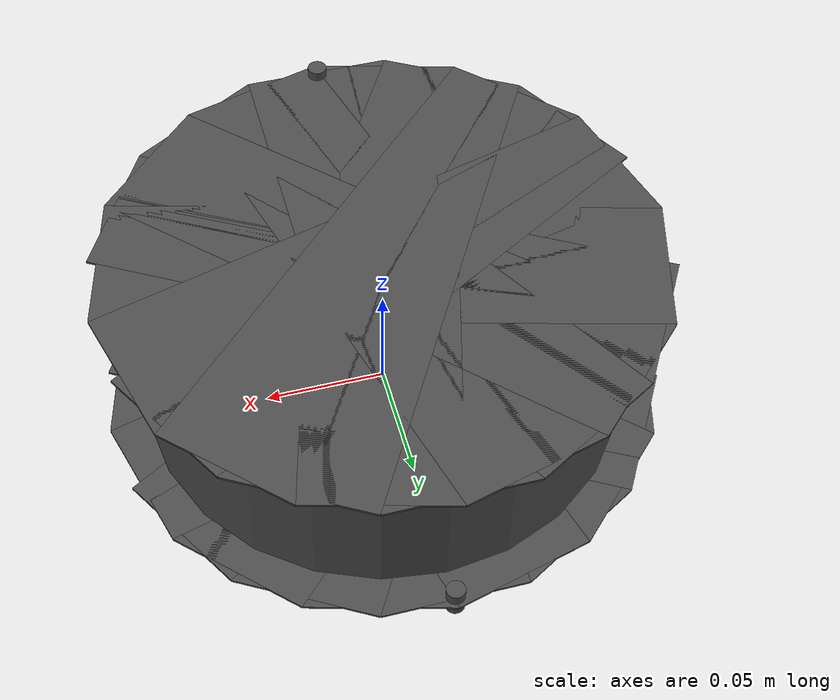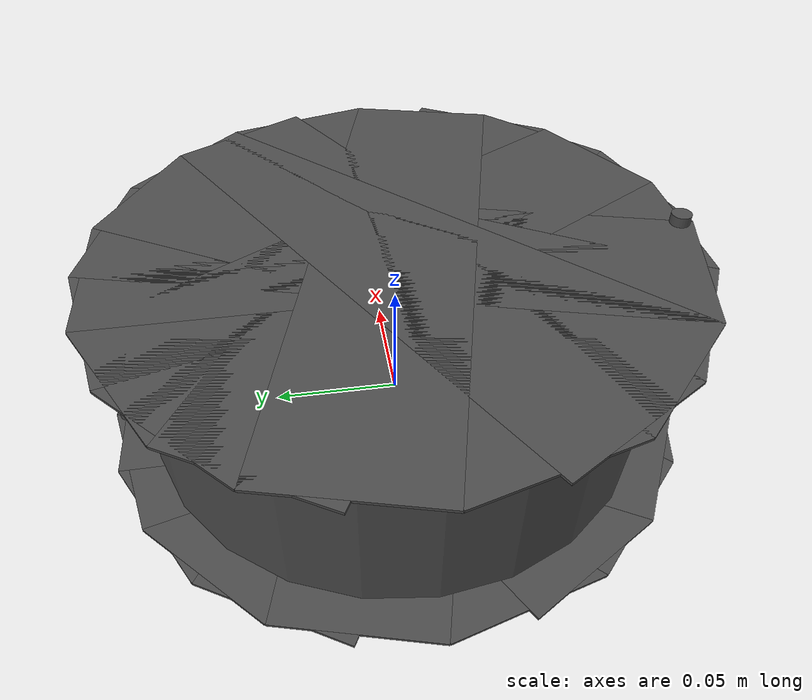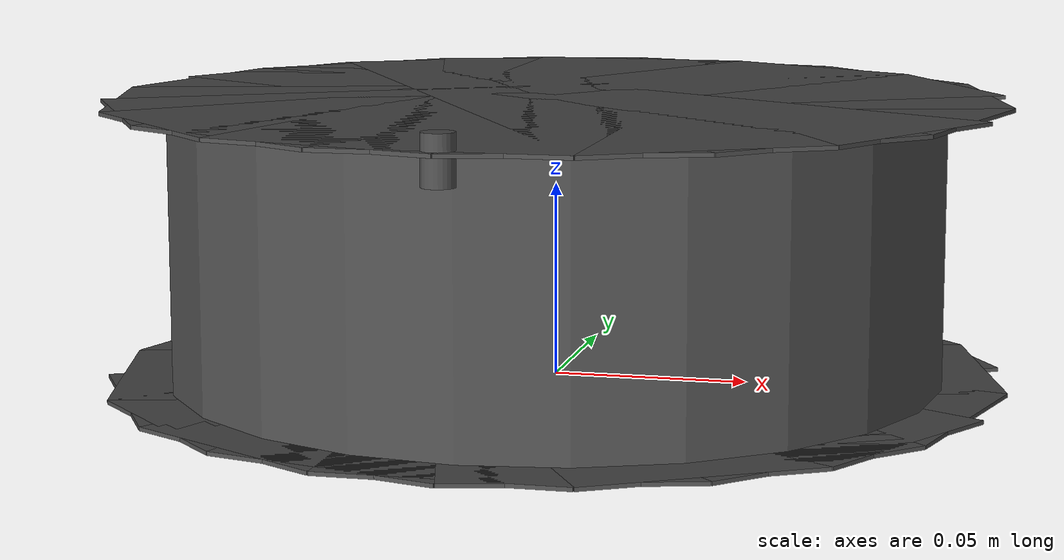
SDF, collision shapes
<?xml version="1.0" ?>
<sdf version="1.6">
  <model name="pulley_part_ariac">
    <link name="link">
      <inertial>
        <pose>0 0 0.035145 0 0 0</pose>
        <mass>0.5</mass>
        <inertia>
          <ixx>0.00191581703</ixx>
          <ixy>0</ixy>
          <ixz>0</ixz>
          <iyy>0.00191581703</iyy>
          <iyz>0</iyz>
          <izz>0.0034199104</izz>
        </inertia>
      </inertial>

      <collision name="collision_asymmetric_mark_top">
        <pose>0 -0.111 0.0705 0 0 0</pose>
        <max_contacts>10</max_contacts>
         <geometry>
          <cylinder>
            <length>0.012</length>
            <radius>0.00392125</radius>
          </cylinder>
         </geometry>
        <surface>
          <contact>
            <ode>
              <max_vel>0.0</max_vel>
              <min_depth>0.001</min_depth>
            </ode>
          </contact>
        </surface>
      </collision>
      <visual name="visual_asymmetric_mark_top">
        <pose>0 -0.111 0.0705 0 0 0</pose>
         <geometry>
          <cylinder>
            <length>0.012</length>
            <radius>0.00392125</radius>
          </cylinder>
         </geometry>
        <material>
          <lighting>1</lighting>
          <script>
            <uri>file://media/materials/scripts/gazebo.material</uri>
            <name>Gazebo/DarkGrey</name>
          </script>
          <emissive>0 0 0 1</emissive>
        </material>
      </visual>

      <collision name="collision_asymmetric_mark_bottom">
        <pose>0 0.111 -0.0005 0 0 0</pose>
        <max_contacts>10</max_contacts>
         <geometry>
          <cylinder>
            <length>0.012</length>
            <radius>0.00392125</radius>
          </cylinder>
         </geometry>
        <surface>
          <contact>
            <ode>
              <max_vel>0.0</max_vel>
              <min_depth>0.001</min_depth>
            </ode>
          </contact>
        </surface>
      </collision>
      <visual name="visual_asymmetric_mark_bottom">
        <pose>0 0.111 -0.0005 0 0 0</pose>
         <geometry>
          <cylinder>
            <length>0.012</length>
            <radius>0.00392125</radius>
          </cylinder>
         </geometry>
        <material>
          <lighting>1</lighting>
          <script>
            <uri>file://media/materials/scripts/gazebo.material</uri>
            <name>Gazebo/DarkGrey</name>
          </script>
          <emissive>0 0 0 1</emissive>
        </material>
      </visual>

      <!-- Top collisions -->
      <collision name="collision_top_1">
        <pose>0 0 0.0719 0 0 0.2618</pose>
        <geometry>
          <box>
            <size>0.225 0.06 0.001</size>
          </box>
        </geometry>
        <surface>
          <contact>
            <ode>
              <max_vel>0.1</max_vel>
              <min_depth>0.001</min_depth>
            </ode>
          </contact>
        </surface>
      </collision>
      <collision name="collision_top_2">
        <pose>0 0 0.0719 0 0 0.5236</pose>
        <geometry>
          <box>
            <size>0.225 0.06 0.001</size>
          </box>
        </geometry>
        <surface>
          <contact>
            <ode>
              <max_vel>0.1</max_vel>
              <min_depth>0.001</min_depth>
            </ode>
          </contact>
        </surface>
      </collision>
      <collision name="collision_top_3">
        <pose>0 0 0.0719 0 0 0.7854</pose>
        <geometry>
          <box>
            <size>0.225 0.06 0.001</size>
          </box>
        </geometry>
        <surface>
          <contact>
            <ode>
              <max_vel>0.1</max_vel>
              <min_depth>0.001</min_depth>
            </ode>
          </contact>
        </surface>
      </collision>
      <collision name="collision_top_4">
        <pose>0 0 0.0719 0 0 1.0472</pose>
        <geometry>
          <box>
            <size>0.225 0.06 0.001</size>
          </box>
        </geometry>
        <surface>
          <contact>
            <ode>
              <max_vel>0.1</max_vel>
              <min_depth>0.001</min_depth>
            </ode>
          </contact>
        </surface>
      </collision>
      <collision name="collision_top_5">
        <pose>0 0 0.0719 0 0 1.309</pose>
        <geometry>
          <box>
            <size>0.225 0.06 0.001</size>
          </box>
        </geometry>
        <surface>
          <contact>
            <ode>
              <max_vel>0.1</max_vel>
              <min_depth>0.001</min_depth>
            </ode>
          </contact>
        </surface>
      </collision>
      <collision name="collision_top_6">
        <pose>0 0 0.0719 0 0 1.5708</pose>
        <geometry>
          <box>
            <size>0.225 0.06 0.001</size>
          </box>
        </geometry>
        <surface>
          <contact>
            <ode>
              <max_vel>0.1</max_vel>
              <min_depth>0.001</min_depth>
            </ode>
          </contact>
        </surface>
      </collision>
      <collision name="collision_top_7">
        <pose>0 0 0.0719 0 0 1.8326</pose>
        <geometry>
          <box>
            <size>0.225 0.06 0.001</size>
          </box>
        </geometry>
        <surface>
          <contact>
            <ode>
              <max_vel>0.1</max_vel>
              <min_depth>0.001</min_depth>
            </ode>
          </contact>
        </surface>
      </collision>
      <collision name="collision_top_8">
        <pose>0 0 0.0719 0 0 2.0944</pose>
        <geometry>
          <box>
            <size>0.225 0.06 0.001</size>
          </box>
        </geometry>
        <surface>
          <contact>
            <ode>
              <max_vel>0.1</max_vel>
              <min_depth>0.001</min_depth>
            </ode>
          </contact>
        </surface>
      </collision>
      <collision name="collision_top_9">
        <pose>0 0 0.0719 0 0 2.3562</pose>
        <geometry>
          <box>
            <size>0.225 0.06 0.001</size>
          </box>
        </geometry>
        <surface>
          <contact>
            <ode>
              <max_vel>0.1</max_vel>
              <min_depth>0.001</min_depth>
            </ode>
          </contact>
        </surface>
      </collision>
      <collision name="collision_top_10">
        <pose>0 0 0.0719 0 0 2.618</pose>
        <geometry>
          <box>
            <size>0.225 0.06 0.001</size>
          </box>
        </geometry>
        <surface>
          <contact>
            <ode>
              <max_vel>0.1</max_vel>
              <min_depth>0.001</min_depth>
            </ode>
          </contact>
        </surface>
      </collision>
      <collision name="collision_top_11">
        <pose>0 0 0.0719 0 0 2.8798</pose>
        <geometry>
          <box>
            <size>0.225 0.06 0.001</size>
          </box>
        </geometry>
        <surface>
          <contact>
            <ode>
              <max_vel>0.1</max_vel>
              <min_depth>0.001</min_depth>
            </ode>
          </contact>
        </surface>
      </collision>

      <!-- Botton collisions -->
      <collision name="collision_bottom_1">
        <pose>0 0 0 0 0 0.2618</pose>
        <geometry>
          <box>
            <size>0.225 0.06 0.001</size>
          </box>
        </geometry>
        <surface>
          <contact>
            <ode>
              <max_vel>0.1</max_vel>
              <min_depth>0.001</min_depth>
            </ode>
          </contact>
        </surface>
      </collision>
      <collision name="collision_bottom_2">
        <pose>0 0 0 0 0 0.5236</pose>
        <geometry>
          <box>
            <size>0.225 0.06 0.001</size>
          </box>
        </geometry>
        <surface>
          <contact>
            <ode>
              <max_vel>0.1</max_vel>
              <min_depth>0.001</min_depth>
            </ode>
          </contact>
        </surface>
      </collision>
      <collision name="collision_bottom_3">
        <pose>0 0 0 0 0 0.7854</pose>
        <geometry>
          <box>
            <size>0.225 0.06 0.001</size>
          </box>
        </geometry>
        <surface>
          <contact>
            <ode>
              <max_vel>0.1</max_vel>
              <min_depth>0.001</min_depth>
            </ode>
          </contact>
        </surface>
      </collision>
      <collision name="collision_bottom_4">
        <pose>0 0 0 0 0 1.0472</pose>
        <geometry>
          <box>
            <size>0.225 0.06 0.001</size>
          </box>
        </geometry>
        <surface>
          <contact>
            <ode>
              <max_vel>0.1</max_vel>
              <min_depth>0.001</min_depth>
            </ode>
          </contact>
        </surface>
      </collision>
      <collision name="collision_bottom_5">
        <pose>0 0 0 0 0 1.309</pose>
        <geometry>
          <box>
            <size>0.225 0.06 0.001</size>
          </box>
        </geometry>
        <surface>
          <contact>
            <ode>
              <max_vel>0.1</max_vel>
              <min_depth>0.001</min_depth>
            </ode>
          </contact>
        </surface>
      </collision>
      <collision name="collision_bottom_6">
        <pose>0 0 0 0 0 1.5708</pose>
        <geometry>
          <box>
            <size>0.225 0.06 0.001</size>
          </box>
        </geometry>
        <surface>
          <contact>
            <ode>
              <max_vel>0.1</max_vel>
              <min_depth>0.001</min_depth>
            </ode>
          </contact>
        </surface>
      </collision>
      <collision name="collision_bottom_7">
        <pose>0 0 0 0 0 1.8326</pose>
        <geometry>
          <box>
            <size>0.225 0.06 0.001</size>
          </box>
        </geometry>
        <surface>
          <contact>
            <ode>
              <max_vel>0.1</max_vel>
              <min_depth>0.001</min_depth>
            </ode>
          </contact>
        </surface>
      </collision>
      <collision name="collision_bottom_8">
        <pose>0 0 0 0 0 2.0944</pose>
        <geometry>
          <box>
            <size>0.225 0.06 0.001</size>
          </box>
        </geometry>
        <surface>
          <contact>
            <ode>
              <max_vel>0.1</max_vel>
              <min_depth>0.001</min_depth>
            </ode>
          </contact>
        </surface>
      </collision>
      <collision name="collision_bottom_9">
        <pose>0 0 0 0 0 2.3562</pose>
        <geometry>
          <box>
            <size>0.225 0.06 0.001</size>
          </box>
        </geometry>
        <surface>
          <contact>
            <ode>
              <max_vel>0.1</max_vel>
              <min_depth>0.001</min_depth>
            </ode>
          </contact>
        </surface>
      </collision>
      <collision name="collision_bottom_10">
        <pose>0 0 0 0 0 2.618</pose>
        <geometry>
          <box>
            <size>0.225 0.06 0.001</size>
          </box>
        </geometry>
        <surface>
          <contact>
            <ode>
              <max_vel>0.1</max_vel>
              <min_depth>0.001</min_depth>
            </ode>
          </contact>
        </surface>
      </collision>
      <collision name="collision_bottom_11">
        <pose>0 0 0 0 0 2.8798</pose>
        <geometry>
          <box>
            <size>0.225 0.06 0.001</size>
          </box>
        </geometry>
        <surface>
          <contact>
            <ode>
              <max_vel>0.1</max_vel>
              <min_depth>0.001</min_depth>
            </ode>
          </contact>
        </surface>
      </collision>

      <!-- Core collision -->
      <collision name="collision_core">
        <pose>0 0 0.035 0 0 0</pose>
        <geometry>
          <cylinder>
            <length>0.07</length>
            <radius>0.1</radius>
          </cylinder>
        </geometry>
      </collision>

      <visual name="visual">
        <geometry>
          <mesh>
            <uri>model://pulley_part_ariac/meshes/pulley.dae</uri>
          </mesh>
        </geometry>
        <material>
          <script>
            <uri>model://arm_part_ariac/materials/scripts</uri>
            <uri>model://arm_part_ariac/materials/textures</uri>
            <name>ArmPart/Diffuse</name>
          </script>
        </material>
       </visual>
    </link>
  </model>
</sdf>
